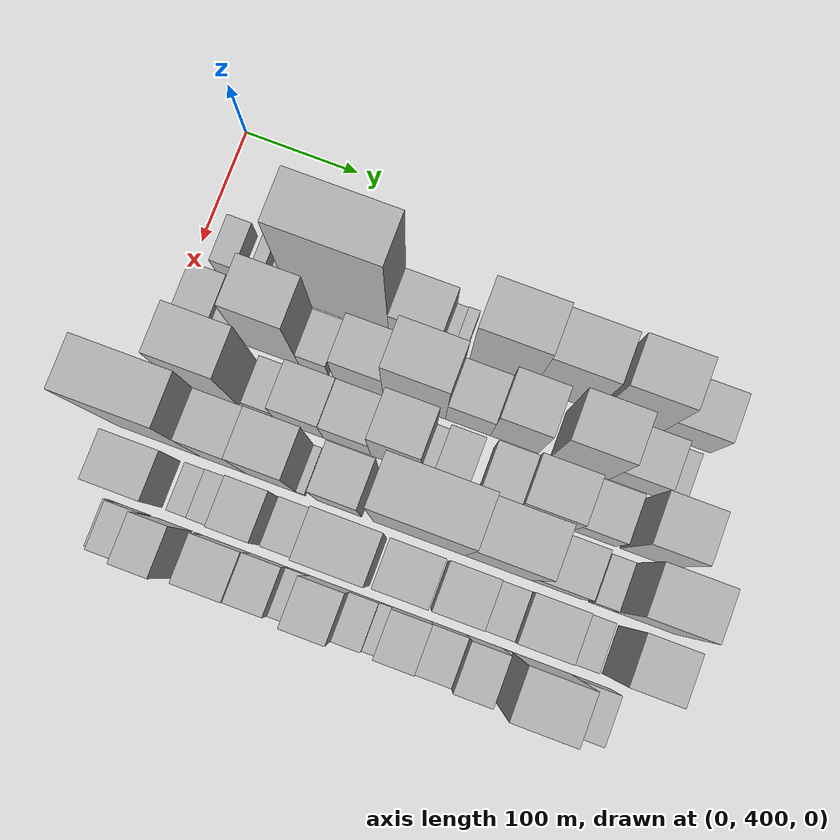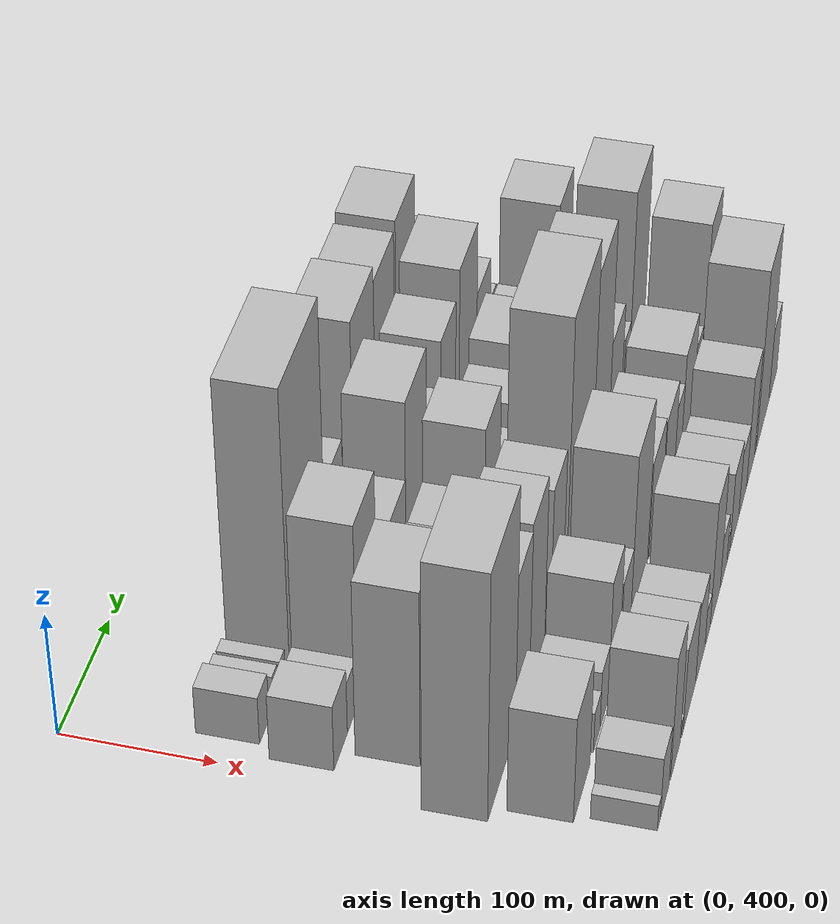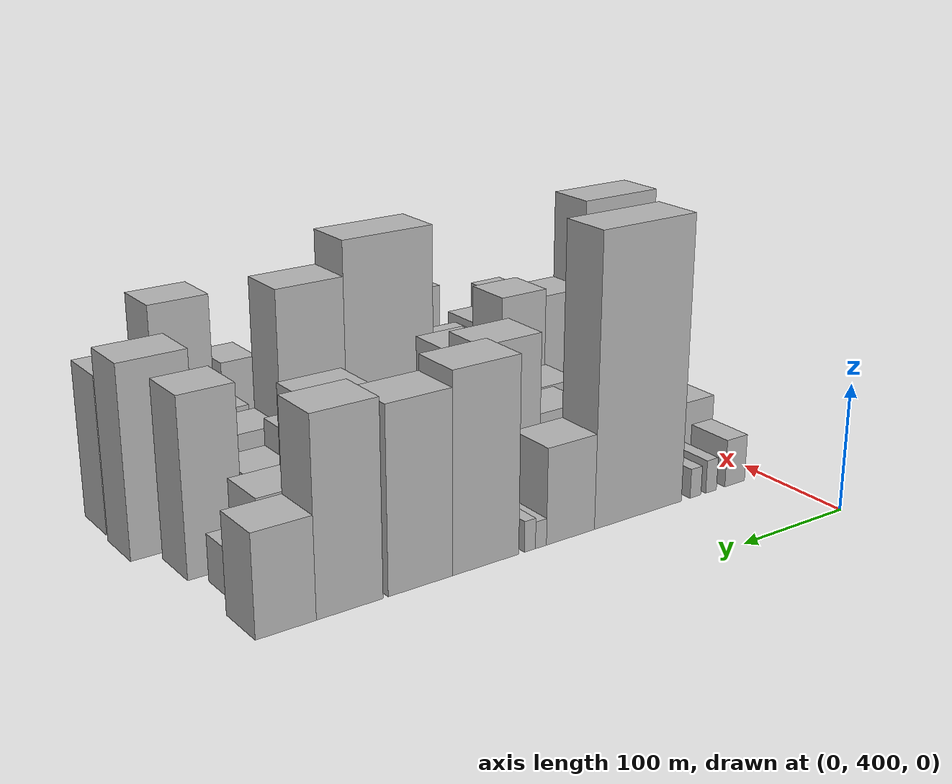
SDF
<sdf version="1.6">
 <world name="default">
  <model name="building_38">
   <static>1</static>
   <pose>100.0000 431.2023 0 0.000000 0.000000 0.000000</pose>
   <link name="link">
    <pose>0 0 19.50 0 0 0</pose>
    <collision name="collision"><geometry><box><size>40.0000 21.1716 39.0000</size></box></geometry></collision>
    <visual name="visual">
     <cast_shadows>0</cast_shadows>
     <geometry><box><size>40.0000 21.1716 39.0000</size></box></geometry>
     <material>
      <script>
       <uri>model://HANNAS_wall/materials/scripts</uri>
       <uri>model://HANNAS_wall/materials/textures</uri>
       <name>vrc/HANNAS_wall</name>
      </script>
     </material>
    </visual>
   </link>
  </model>
  <model name="building_39">
   <static>1</static>
   <pose>100.0000 456.4045 0 0.000000 0.000000 0.000000</pose>
   <link name="link">
    <pose>0 0 13.50 0 0 0</pose>
    <collision name="collision"><geometry><box><size>40.0000 11.2328 27.0000</size></box></geometry></collision>
    <visual name="visual">
     <cast_shadows>0</cast_shadows>
     <geometry><box><size>40.0000 11.2328 27.0000</size></box></geometry>
     <material>
      <script>
       <uri>model://HANNAS_wall/materials/scripts</uri>
       <uri>model://HANNAS_wall/materials/textures</uri>
       <name>vrc/HANNAS_wall</name>
      </script>
     </material>
    </visual>
   </link>
  </model>
  <model name="building_40">
   <static>1</static>
   <pose>100.0000 472.6776 0 0.000000 0.000000 0.000000</pose>
   <link name="link">
    <pose>0 0 12.00 0 0 0</pose>
    <collision name="collision"><geometry><box><size>40.0000 11.3134 24.0000</size></box></geometry></collision>
    <visual name="visual">
     <cast_shadows>0</cast_shadows>
     <geometry><box><size>40.0000 11.3134 24.0000</size></box></geometry>
     <material>
      <script>
       <uri>model://HANNAS_wall/materials/scripts</uri>
       <uri>model://HANNAS_wall/materials/textures</uri>
       <name>vrc/HANNAS_wall</name>
      </script>
     </material>
    </visual>
   </link>
  </model>
  <model name="building_41">
   <static>1</static>
   <pose>100.0000 530.1198 0 0.000000 0.000000 0.000000</pose>
   <link name="link">
    <pose>0 0 112.50 0 0 0</pose>
    <collision name="collision"><geometry><box><size>40.0000 85.5712 225.0000</size></box></geometry></collision>
    <visual name="visual">
     <cast_shadows>0</cast_shadows>
     <geometry><box><size>40.0000 85.5712 225.0000</size></box></geometry>
     <material>
      <script>
       <uri>model://HANNAS_wall/materials/scripts</uri>
       <uri>model://HANNAS_wall/materials/textures</uri>
       <name>vrc/HANNAS_wall</name>
      </script>
     </material>
    </visual>
   </link>
  </model>
  <model name="building_42">
   <static>1</static>
   <pose>100.0000 595.1316 0 0.000000 0.000000 0.000000</pose>
   <link name="link">
    <pose>0 0 37.50 0 0 0</pose>
    <collision name="collision"><geometry><box><size>40.0000 44.4523 75.0000</size></box></geometry></collision>
    <visual name="visual">
     <cast_shadows>0</cast_shadows>
     <geometry><box><size>40.0000 44.4523 75.0000</size></box></geometry>
     <material>
      <script>
       <uri>model://HANNAS_wall/materials/scripts</uri>
       <uri>model://HANNAS_wall/materials/textures</uri>
       <name>vrc/HANNAS_wall</name>
      </script>
     </material>
    </visual>
   </link>
  </model>
  <model name="building_43">
   <static>1</static>
   <pose>100.0000 622.2904 0 0.000000 0.000000 0.000000</pose>
   <link name="link">
    <pose>0 0 10.50 0 0 0</pose>
    <collision name="collision"><geometry><box><size>40.0000 9.8653 21.0000</size></box></geometry></collision>
    <visual name="visual">
     <cast_shadows>0</cast_shadows>
     <geometry><box><size>40.0000 9.8653 21.0000</size></box></geometry>
     <material>
      <script>
       <uri>model://HANNAS_wall/materials/scripts</uri>
       <uri>model://HANNAS_wall/materials/textures</uri>
       <name>vrc/HANNAS_wall</name>
      </script>
     </material>
    </visual>
   </link>
  </model>
  <model name="building_44">
   <static>1</static>
   <pose>100.0000 632.1408 0 0.000000 0.000000 0.000000</pose>
   <link name="link">
    <pose>0 0 12.00 0 0 0</pose>
    <collision name="collision"><geometry><box><size>40.0000 9.8353 24.0000</size></box></geometry></collision>
    <visual name="visual">
     <cast_shadows>0</cast_shadows>
     <geometry><box><size>40.0000 9.8353 24.0000</size></box></geometry>
     <material>
      <script>
       <uri>model://HANNAS_wall/materials/scripts</uri>
       <uri>model://HANNAS_wall/materials/textures</uri>
       <name>vrc/HANNAS_wall</name>
      </script>
     </material>
    </visual>
   </link>
  </model>
  <model name="building_45">
   <static>1</static>
   <pose>100.0000 670.4253 0 0.000000 0.000000 0.000000</pose>
   <link name="link">
    <pose>0 0 75.00 0 0 0</pose>
    <collision name="collision"><geometry><box><size>40.0000 56.7336 150.0000</size></box></geometry></collision>
    <visual name="visual">
     <cast_shadows>0</cast_shadows>
     <geometry><box><size>40.0000 56.7336 150.0000</size></box></geometry>
     <material>
      <script>
       <uri>model://HANNAS_wall/materials/scripts</uri>
       <uri>model://HANNAS_wall/materials/textures</uri>
       <name>vrc/HANNAS_wall</name>
      </script>
     </material>
    </visual>
   </link>
  </model>
  <model name="building_46">
   <static>1</static>
   <pose>100.0000 725.0157 0 0.000000 0.000000 0.000000</pose>
   <link name="link">
    <pose>0 0 69.00 0 0 0</pose>
    <collision name="collision"><geometry><box><size>40.0000 52.4473 138.0000</size></box></geometry></collision>
    <visual name="visual">
     <cast_shadows>0</cast_shadows>
     <geometry><box><size>40.0000 52.4473 138.0000</size></box></geometry>
     <material>
      <script>
       <uri>model://HANNAS_wall/materials/scripts</uri>
       <uri>model://HANNAS_wall/materials/textures</uri>
       <name>vrc/HANNAS_wall</name>
      </script>
     </material>
    </visual>
   </link>
  </model>
  <model name="building_47">
   <static>1</static>
   <pose>100.0000 780.8229 0 0.000000 0.000000 0.000000</pose>
   <link name="link">
    <pose>0 0 72.00 0 0 0</pose>
    <collision name="collision"><geometry><box><size>40.0000 51.1670 144.0000</size></box></geometry></collision>
    <visual name="visual">
     <cast_shadows>0</cast_shadows>
     <geometry><box><size>40.0000 51.1670 144.0000</size></box></geometry>
     <material>
      <script>
       <uri>model://HANNAS_wall/materials/scripts</uri>
       <uri>model://HANNAS_wall/materials/textures</uri>
       <name>vrc/HANNAS_wall</name>
      </script>
     </material>
    </visual>
   </link>
  </model>
  <model name="building_48">
   <static>1</static>
   <pose>100.0000 828.6658 0 0.000000 0.000000 0.000000</pose>
   <link name="link">
    <pose>0 0 37.50 0 0 0</pose>
    <collision name="collision"><geometry><box><size>40.0000 44.5188 75.0000</size></box></geometry></collision>
    <visual name="visual">
     <cast_shadows>0</cast_shadows>
     <geometry><box><size>40.0000 44.5188 75.0000</size></box></geometry>
     <material>
      <script>
       <uri>model://HANNAS_wall/materials/scripts</uri>
       <uri>model://HANNAS_wall/materials/textures</uri>
       <name>vrc/HANNAS_wall</name>
      </script>
     </material>
    </visual>
   </link>
  </model>
  <model name="building_87">
   <static>1</static>
   <pose>149.0000 425.9440 0 0.000000 0.000000 0.000000</pose>
   <link name="link">
    <pose>0 0 27.00 0 0 0</pose>
    <collision name="collision"><geometry><box><size>40.0000 31.2942 54.0000</size></box></geometry></collision>
    <visual name="visual">
     <cast_shadows>0</cast_shadows>
     <geometry><box><size>40.0000 31.2942 54.0000</size></box></geometry>
     <material>
      <script>
       <uri>model://HANNAS_wall/materials/scripts</uri>
       <uri>model://HANNAS_wall/materials/textures</uri>
       <name>vrc/HANNAS_wall</name>
      </script>
     </material>
    </visual>
   </link>
  </model>
  <model name="building_88">
   <static>1</static>
   <pose>149.0000 452.9123 0 0.000000 0.000000 0.000000</pose>
   <link name="link">
    <pose>0 0 21.00 0 0 0</pose>
    <collision name="collision"><geometry><box><size>40.0000 22.6424 42.0000</size></box></geometry></collision>
    <visual name="visual">
     <cast_shadows>0</cast_shadows>
     <geometry><box><size>40.0000 22.6424 42.0000</size></box></geometry>
     <material>
      <script>
       <uri>model://HANNAS_wall/materials/scripts</uri>
       <uri>model://HANNAS_wall/materials/textures</uri>
       <name>vrc/HANNAS_wall</name>
      </script>
     </material>
    </visual>
   </link>
  </model>
  <model name="building_89">
   <static>1</static>
   <pose>149.0000 488.6452 0 0.000000 0.000000 0.000000</pose>
   <link name="link">
    <pose>0 0 75.00 0 0 0</pose>
    <collision name="collision"><geometry><box><size>40.0000 48.8234 150.0000</size></box></geometry></collision>
    <visual name="visual">
     <cast_shadows>0</cast_shadows>
     <geometry><box><size>40.0000 48.8234 150.0000</size></box></geometry>
     <material>
      <script>
       <uri>model://HANNAS_wall/materials/scripts</uri>
       <uri>model://HANNAS_wall/materials/textures</uri>
       <name>vrc/HANNAS_wall</name>
      </script>
     </material>
    </visual>
   </link>
  </model>
  <model name="building_90">
   <static>1</static>
   <pose>149.0000 525.9515 0 0.000000 0.000000 0.000000</pose>
   <link name="link">
    <pose>0 0 22.50 0 0 0</pose>
    <collision name="collision"><geometry><box><size>40.0000 25.7893 45.0000</size></box></geometry></collision>
    <visual name="visual">
     <cast_shadows>0</cast_shadows>
     <geometry><box><size>40.0000 25.7893 45.0000</size></box></geometry>
     <material>
      <script>
       <uri>model://HANNAS_wall/materials/scripts</uri>
       <uri>model://HANNAS_wall/materials/textures</uri>
       <name>vrc/HANNAS_wall</name>
      </script>
     </material>
    </visual>
   </link>
  </model>
  <model name="building_91">
   <static>1</static>
   <pose>149.0000 564.6220 0 0.000000 0.000000 0.000000</pose>
   <link name="link">
    <pose>0 0 39.00 0 0 0</pose>
    <collision name="collision"><geometry><box><size>40.0000 43.5516 78.0000</size></box></geometry></collision>
    <visual name="visual">
     <cast_shadows>0</cast_shadows>
     <geometry><box><size>40.0000 43.5516 78.0000</size></box></geometry>
     <material>
      <script>
       <uri>model://HANNAS_wall/materials/scripts</uri>
       <uri>model://HANNAS_wall/materials/textures</uri>
       <name>vrc/HANNAS_wall</name>
      </script>
     </material>
    </visual>
   </link>
  </model>
  <model name="building_92">
   <static>1</static>
   <pose>149.0000 613.3018 0 0.000000 0.000000 0.000000</pose>
   <link name="link">
    <pose>0 0 70.50 0 0 0</pose>
    <collision name="collision"><geometry><box><size>40.0000 53.8082 141.0000</size></box></geometry></collision>
    <visual name="visual">
     <cast_shadows>0</cast_shadows>
     <geometry><box><size>40.0000 53.8082 141.0000</size></box></geometry>
     <material>
      <script>
       <uri>model://HANNAS_wall/materials/scripts</uri>
       <uri>model://HANNAS_wall/materials/textures</uri>
       <name>vrc/HANNAS_wall</name>
      </script>
     </material>
    </visual>
   </link>
  </model>
  <model name="building_93">
   <static>1</static>
   <pose>149.0000 659.6577 0 0.000000 0.000000 0.000000</pose>
   <link name="link">
    <pose>0 0 37.50 0 0 0</pose>
    <collision name="collision"><geometry><box><size>40.0000 38.9035 75.0000</size></box></geometry></collision>
    <visual name="visual">
     <cast_shadows>0</cast_shadows>
     <geometry><box><size>40.0000 38.9035 75.0000</size></box></geometry>
     <material>
      <script>
       <uri>model://HANNAS_wall/materials/scripts</uri>
       <uri>model://HANNAS_wall/materials/textures</uri>
       <name>vrc/HANNAS_wall</name>
      </script>
     </material>
    </visual>
   </link>
  </model>
  <model name="building_94">
   <static>1</static>
   <pose>149.0000 699.7835 0 0.000000 0.000000 0.000000</pose>
   <link name="link">
    <pose>0 0 57.00 0 0 0</pose>
    <collision name="collision"><geometry><box><size>40.0000 41.3482 114.0000</size></box></geometry></collision>
    <visual name="visual">
     <cast_shadows>0</cast_shadows>
     <geometry><box><size>40.0000 41.3482 114.0000</size></box></geometry>
     <material>
      <script>
       <uri>model://HANNAS_wall/materials/scripts</uri>
       <uri>model://HANNAS_wall/materials/textures</uri>
       <name>vrc/HANNAS_wall</name>
      </script>
     </material>
    </visual>
   </link>
  </model>
  <model name="building_95">
   <static>1</static>
   <pose>149.0000 755.7839 0 0.000000 0.000000 0.000000</pose>
   <link name="link">
    <pose>0 0 66.00 0 0 0</pose>
    <collision name="collision"><geometry><box><size>40.0000 50.6525 132.0000</size></box></geometry></collision>
    <visual name="visual">
     <cast_shadows>0</cast_shadows>
     <geometry><box><size>40.0000 50.6525 132.0000</size></box></geometry>
     <material>
      <script>
       <uri>model://HANNAS_wall/materials/scripts</uri>
       <uri>model://HANNAS_wall/materials/textures</uri>
       <name>vrc/HANNAS_wall</name>
      </script>
     </material>
    </visual>
   </link>
  </model>
  <model name="building_96">
   <static>1</static>
   <pose>149.0000 801.1169 0 0.000000 0.000000 0.000000</pose>
   <link name="link">
    <pose>0 0 36.00 0 0 0</pose>
    <collision name="collision"><geometry><box><size>40.0000 40.0135 72.0000</size></box></geometry></collision>
    <visual name="visual">
     <cast_shadows>0</cast_shadows>
     <geometry><box><size>40.0000 40.0135 72.0000</size></box></geometry>
     <material>
      <script>
       <uri>model://HANNAS_wall/materials/scripts</uri>
       <uri>model://HANNAS_wall/materials/textures</uri>
       <name>vrc/HANNAS_wall</name>
      </script>
     </material>
    </visual>
   </link>
  </model>
  <model name="building_97">
   <static>1</static>
   <pose>149.0000 830.2136 0 0.000000 0.000000 0.000000</pose>
   <link name="link">
    <pose>0 0 18.00 0 0 0</pose>
    <collision name="collision"><geometry><box><size>40.0000 18.1798 36.0000</size></box></geometry></collision>
    <visual name="visual">
     <cast_shadows>0</cast_shadows>
     <geometry><box><size>40.0000 18.1798 36.0000</size></box></geometry>
     <material>
      <script>
       <uri>model://HANNAS_wall/materials/scripts</uri>
       <uri>model://HANNAS_wall/materials/textures</uri>
       <name>vrc/HANNAS_wall</name>
      </script>
     </material>
    </visual>
   </link>
  </model>
  <model name="building_132">
   <static>1</static>
   <pose>198.0000 452.6744 0 0.000000 0.000000 0.000000</pose>
   <link name="link">
    <pose>0 0 72.00 0 0 0</pose>
    <collision name="collision"><geometry><box><size>40.0000 54.0747 144.0000</size></box></geometry></collision>
    <visual name="visual">
     <cast_shadows>0</cast_shadows>
     <geometry><box><size>40.0000 54.0747 144.0000</size></box></geometry>
     <material>
      <script>
       <uri>model://HANNAS_wall/materials/scripts</uri>
       <uri>model://HANNAS_wall/materials/textures</uri>
       <name>vrc/HANNAS_wall</name>
      </script>
     </material>
    </visual>
   </link>
  </model>
  <model name="building_133">
   <static>1</static>
   <pose>198.0000 499.1695 0 0.000000 0.000000 0.000000</pose>
   <link name="link">
    <pose>0 0 21.00 0 0 0</pose>
    <collision name="collision"><geometry><box><size>40.0000 24.9154 42.0000</size></box></geometry></collision>
    <visual name="visual">
     <cast_shadows>0</cast_shadows>
     <geometry><box><size>40.0000 24.9154 42.0000</size></box></geometry>
     <material>
      <script>
       <uri>model://HANNAS_wall/materials/scripts</uri>
       <uri>model://HANNAS_wall/materials/textures</uri>
       <name>vrc/HANNAS_wall</name>
      </script>
     </material>
    </visual>
   </link>
  </model>
  <model name="building_134">
   <static>1</static>
   <pose>198.0000 532.3416 0 0.000000 0.000000 0.000000</pose>
   <link name="link">
    <pose>0 0 37.50 0 0 0</pose>
    <collision name="collision"><geometry><box><size>40.0000 41.4289 75.0000</size></box></geometry></collision>
    <visual name="visual">
     <cast_shadows>0</cast_shadows>
     <geometry><box><size>40.0000 41.4289 75.0000</size></box></geometry>
     <material>
      <script>
       <uri>model://HANNAS_wall/materials/scripts</uri>
       <uri>model://HANNAS_wall/materials/textures</uri>
       <name>vrc/HANNAS_wall</name>
      </script>
     </material>
    </visual>
   </link>
  </model>
  <model name="building_135">
   <static>1</static>
   <pose>198.0000 573.5250 0 0.000000 0.000000 0.000000</pose>
   <link name="link">
    <pose>0 0 36.00 0 0 0</pose>
    <collision name="collision"><geometry><box><size>40.0000 40.9378 72.0000</size></box></geometry></collision>
    <visual name="visual">
     <cast_shadows>0</cast_shadows>
     <geometry><box><size>40.0000 40.9378 72.0000</size></box></geometry>
     <material>
      <script>
       <uri>model://HANNAS_wall/materials/scripts</uri>
       <uri>model://HANNAS_wall/materials/textures</uri>
       <name>vrc/HANNAS_wall</name>
      </script>
     </material>
    </visual>
   </link>
  </model>
  <model name="building_136">
   <static>1</static>
   <pose>198.0000 615.1173 0 0.000000 0.000000 0.000000</pose>
   <link name="link">
    <pose>0 0 61.50 0 0 0</pose>
    <collision name="collision"><geometry><box><size>40.0000 42.2467 123.0000</size></box></geometry></collision>
    <visual name="visual">
     <cast_shadows>0</cast_shadows>
     <geometry><box><size>40.0000 42.2467 123.0000</size></box></geometry>
     <material>
      <script>
       <uri>model://HANNAS_wall/materials/scripts</uri>
       <uri>model://HANNAS_wall/materials/textures</uri>
       <name>vrc/HANNAS_wall</name>
      </script>
     </material>
    </visual>
   </link>
  </model>
  <model name="building_137">
   <static>1</static>
   <pose>198.0000 641.7158 0 0.000000 0.000000 0.000000</pose>
   <link name="link">
    <pose>0 0 12.00 0 0 0</pose>
    <collision name="collision"><geometry><box><size>40.0000 10.9503 24.0000</size></box></geometry></collision>
    <visual name="visual">
     <cast_shadows>0</cast_shadows>
     <geometry><box><size>40.0000 10.9503 24.0000</size></box></geometry>
     <material>
      <script>
       <uri>model://HANNAS_wall/materials/scripts</uri>
       <uri>model://HANNAS_wall/materials/textures</uri>
       <name>vrc/HANNAS_wall</name>
      </script>
     </material>
    </visual>
   </link>
  </model>
  <model name="building_138">
   <static>1</static>
   <pose>198.0000 661.6977 0 0.000000 0.000000 0.000000</pose>
   <link name="link">
    <pose>0 0 27.00 0 0 0</pose>
    <collision name="collision"><geometry><box><size>40.0000 29.0134 54.0000</size></box></geometry></collision>
    <visual name="visual">
     <cast_shadows>0</cast_shadows>
     <geometry><box><size>40.0000 29.0134 54.0000</size></box></geometry>
     <material>
      <script>
       <uri>model://HANNAS_wall/materials/scripts</uri>
       <uri>model://HANNAS_wall/materials/textures</uri>
       <name>vrc/HANNAS_wall</name>
      </script>
     </material>
    </visual>
   </link>
  </model>
  <model name="building_139">
   <static>1</static>
   <pose>198.0000 701.8860 0 0.000000 0.000000 0.000000</pose>
   <link name="link">
    <pose>0 0 33.00 0 0 0</pose>
    <collision name="collision"><geometry><box><size>40.0000 33.3633 66.0000</size></box></geometry></collision>
    <visual name="visual">
     <cast_shadows>0</cast_shadows>
     <geometry><box><size>40.0000 33.3633 66.0000</size></box></geometry>
     <material>
      <script>
       <uri>model://HANNAS_wall/materials/scripts</uri>
       <uri>model://HANNAS_wall/materials/textures</uri>
       <name>vrc/HANNAS_wall</name>
      </script>
     </material>
    </visual>
   </link>
  </model>
  <model name="building_140">
   <static>1</static>
   <pose>198.0000 742.6270 0 0.000000 0.000000 0.000000</pose>
   <link name="link">
    <pose>0 0 43.50 0 0 0</pose>
    <collision name="collision"><geometry><box><size>40.0000 48.1188 87.0000</size></box></geometry></collision>
    <visual name="visual">
     <cast_shadows>0</cast_shadows>
     <geometry><box><size>40.0000 48.1188 87.0000</size></box></geometry>
     <material>
      <script>
       <uri>model://HANNAS_wall/materials/scripts</uri>
       <uri>model://HANNAS_wall/materials/textures</uri>
       <name>vrc/HANNAS_wall</name>
      </script>
     </material>
    </visual>
   </link>
  </model>
  <model name="building_141">
   <static>1</static>
   <pose>198.0000 785.0281 0 0.000000 0.000000 0.000000</pose>
   <link name="link">
    <pose>0 0 33.00 0 0 0</pose>
    <collision name="collision"><geometry><box><size>40.0000 36.6835 66.0000</size></box></geometry></collision>
    <visual name="visual">
     <cast_shadows>0</cast_shadows>
     <geometry><box><size>40.0000 36.6835 66.0000</size></box></geometry>
     <material>
      <script>
       <uri>model://HANNAS_wall/materials/scripts</uri>
       <uri>model://HANNAS_wall/materials/textures</uri>
       <name>vrc/HANNAS_wall</name>
      </script>
     </material>
    </visual>
   </link>
  </model>
  <model name="building_142">
   <static>1</static>
   <pose>198.0000 829.0769 0 0.000000 0.000000 0.000000</pose>
   <link name="link">
    <pose>0 0 67.50 0 0 0</pose>
    <collision name="collision"><geometry><box><size>40.0000 43.4140 135.0000</size></box></geometry></collision>
    <visual name="visual">
     <cast_shadows>0</cast_shadows>
     <geometry><box><size>40.0000 43.4140 135.0000</size></box></geometry>
     <material>
      <script>
       <uri>model://HANNAS_wall/materials/scripts</uri>
       <uri>model://HANNAS_wall/materials/textures</uri>
       <name>vrc/HANNAS_wall</name>
      </script>
     </material>
    </visual>
   </link>
  </model>
  <model name="building_178">
   <static>1</static>
   <pose>247.0000 429.5662 0 0.000000 0.000000 0.000000</pose>
   <link name="link">
    <pose>0 0 100.50 0 0 0</pose>
    <collision name="collision"><geometry><box><size>40.0000 73.9250 201.0000</size></box></geometry></collision>
    <visual name="visual">
     <cast_shadows>0</cast_shadows>
     <geometry><box><size>40.0000 73.9250 201.0000</size></box></geometry>
     <material>
      <script>
       <uri>model://HANNAS_wall/materials/scripts</uri>
       <uri>model://HANNAS_wall/materials/textures</uri>
       <name>vrc/HANNAS_wall</name>
      </script>
     </material>
    </visual>
   </link>
  </model>
  <model name="building_179">
   <static>1</static>
   <pose>247.0000 486.2080 0 0.000000 0.000000 0.000000</pose>
   <link name="link">
    <pose>0 0 64.50 0 0 0</pose>
    <collision name="collision"><geometry><box><size>40.0000 39.3587 129.0000</size></box></geometry></collision>
    <visual name="visual">
     <cast_shadows>0</cast_shadows>
     <geometry><box><size>40.0000 39.3587 129.0000</size></box></geometry>
     <material>
      <script>
       <uri>model://HANNAS_wall/materials/scripts</uri>
       <uri>model://HANNAS_wall/materials/textures</uri>
       <name>vrc/HANNAS_wall</name>
      </script>
     </material>
    </visual>
   </link>
  </model>
  <model name="building_180">
   <static>1</static>
   <pose>247.0000 527.4903 0 0.000000 0.000000 0.000000</pose>
   <link name="link">
    <pose>0 0 67.50 0 0 0</pose>
    <collision name="collision"><geometry><box><size>40.0000 43.2059 135.0000</size></box></geometry></collision>
    <visual name="visual">
     <cast_shadows>0</cast_shadows>
     <geometry><box><size>40.0000 43.2059 135.0000</size></box></geometry>
     <material>
      <script>
       <uri>model://HANNAS_wall/materials/scripts</uri>
       <uri>model://HANNAS_wall/materials/textures</uri>
       <name>vrc/HANNAS_wall</name>
      </script>
     </material>
    </visual>
   </link>
  </model>
  <model name="building_181">
   <static>1</static>
   <pose>247.0000 552.7559 0 0.000000 0.000000 0.000000</pose>
   <link name="link">
    <pose>0 0 7.50 0 0 0</pose>
    <collision name="collision"><geometry><box><size>40.0000 7.3252 15.0000</size></box></geometry></collision>
    <visual name="visual">
     <cast_shadows>0</cast_shadows>
     <geometry><box><size>40.0000 7.3252 15.0000</size></box></geometry>
     <material>
      <script>
       <uri>model://HANNAS_wall/materials/scripts</uri>
       <uri>model://HANNAS_wall/materials/textures</uri>
       <name>vrc/HANNAS_wall</name>
      </script>
     </material>
    </visual>
   </link>
  </model>
  <model name="building_182">
   <static>1</static>
   <pose>247.0000 585.6581 0 0.000000 0.000000 0.000000</pose>
   <link name="link">
    <pose>0 0 54.00 0 0 0</pose>
    <collision name="collision"><geometry><box><size>40.0000 38.4792 108.0000</size></box></geometry></collision>
    <visual name="visual">
     <cast_shadows>0</cast_shadows>
     <geometry><box><size>40.0000 38.4792 108.0000</size></box></geometry>
     <material>
      <script>
       <uri>model://HANNAS_wall/materials/scripts</uri>
       <uri>model://HANNAS_wall/materials/textures</uri>
       <name>vrc/HANNAS_wall</name>
      </script>
     </material>
    </visual>
   </link>
  </model>
  <model name="building_183">
   <static>1</static>
   <pose>247.0000 653.9100 0 0.000000 0.000000 0.000000</pose>
   <link name="link">
    <pose>0 0 102.00 0 0 0</pose>
    <collision name="collision"><geometry><box><size>40.0000 78.0247 204.0000</size></box></geometry></collision>
    <visual name="visual">
     <cast_shadows>0</cast_shadows>
     <geometry><box><size>40.0000 78.0247 204.0000</size></box></geometry>
     <material>
      <script>
       <uri>model://HANNAS_wall/materials/scripts</uri>
       <uri>model://HANNAS_wall/materials/textures</uri>
       <name>vrc/HANNAS_wall</name>
      </script>
     </material>
    </visual>
   </link>
  </model>
  <model name="building_184">
   <static>1</static>
   <pose>247.0000 720.7816 0 0.000000 0.000000 0.000000</pose>
   <link name="link">
    <pose>0 0 88.50 0 0 0</pose>
    <collision name="collision"><geometry><box><size>40.0000 55.7184 177.0000</size></box></geometry></collision>
    <visual name="visual">
     <cast_shadows>0</cast_shadows>
     <geometry><box><size>40.0000 55.7184 177.0000</size></box></geometry>
     <material>
      <script>
       <uri>model://HANNAS_wall/materials/scripts</uri>
       <uri>model://HANNAS_wall/materials/textures</uri>
       <name>vrc/HANNAS_wall</name>
      </script>
     </material>
    </visual>
   </link>
  </model>
  <model name="building_185">
   <static>1</static>
   <pose>247.0000 770.1704 0 0.000000 0.000000 0.000000</pose>
   <link name="link">
    <pose>0 0 37.50 0 0 0</pose>
    <collision name="collision"><geometry><box><size>40.0000 43.0592 75.0000</size></box></geometry></collision>
    <visual name="visual">
     <cast_shadows>0</cast_shadows>
     <geometry><box><size>40.0000 43.0592 75.0000</size></box></geometry>
     <material>
      <script>
       <uri>model://HANNAS_wall/materials/scripts</uri>
       <uri>model://HANNAS_wall/materials/textures</uri>
       <name>vrc/HANNAS_wall</name>
      </script>
     </material>
    </visual>
   </link>
  </model>
  <model name="building_186">
   <static>1</static>
   <pose>247.0000 807.6648 0 0.000000 0.000000 0.000000</pose>
   <link name="link">
    <pose>0 0 19.50 0 0 0</pose>
    <collision name="collision"><geometry><box><size>40.0000 19.9296 39.0000</size></box></geometry></collision>
    <visual name="visual">
     <cast_shadows>0</cast_shadows>
     <geometry><box><size>40.0000 19.9296 39.0000</size></box></geometry>
     <material>
      <script>
       <uri>model://HANNAS_wall/materials/scripts</uri>
       <uri>model://HANNAS_wall/materials/textures</uri>
       <name>vrc/HANNAS_wall</name>
      </script>
     </material>
    </visual>
   </link>
  </model>
  <model name="building_187">
   <static>1</static>
   <pose>247.0000 844.2778 0 0.000000 0.000000 0.000000</pose>
   <link name="link">
    <pose>0 0 73.50 0 0 0</pose>
    <collision name="collision"><geometry><box><size>40.0000 53.2964 147.0000</size></box></geometry></collision>
    <visual name="visual">
     <cast_shadows>0</cast_shadows>
     <geometry><box><size>40.0000 53.2964 147.0000</size></box></geometry>
     <material>
      <script>
       <uri>model://HANNAS_wall/materials/scripts</uri>
       <uri>model://HANNAS_wall/materials/textures</uri>
       <name>vrc/HANNAS_wall</name>
      </script>
     </material>
    </visual>
   </link>
  </model>
  <model name="building_224">
   <static>1</static>
   <pose>296.0000 427.5232 0 0.000000 0.000000 0.000000</pose>
   <link name="link">
    <pose>0 0 43.50 0 0 0</pose>
    <collision name="collision"><geometry><box><size>40.0000 47.7346 87.0000</size></box></geometry></collision>
    <visual name="visual">
     <cast_shadows>0</cast_shadows>
     <geometry><box><size>40.0000 47.7346 87.0000</size></box></geometry>
     <material>
      <script>
       <uri>model://HANNAS_wall/materials/scripts</uri>
       <uri>model://HANNAS_wall/materials/textures</uri>
       <name>vrc/HANNAS_wall</name>
      </script>
     </material>
    </visual>
   </link>
  </model>
  <model name="building_225">
   <static>1</static>
   <pose>296.0000 471.1938 0 0.000000 0.000000 0.000000</pose>
   <link name="link">
    <pose>0 0 16.50 0 0 0</pose>
    <collision name="collision"><geometry><box><size>40.0000 19.6067 33.0000</size></box></geometry></collision>
    <visual name="visual">
     <cast_shadows>0</cast_shadows>
     <geometry><box><size>40.0000 19.6067 33.0000</size></box></geometry>
     <material>
      <script>
       <uri>model://HANNAS_wall/materials/scripts</uri>
       <uri>model://HANNAS_wall/materials/textures</uri>
       <name>vrc/HANNAS_wall</name>
      </script>
     </material>
    </visual>
   </link>
  </model>
  <model name="building_226">
   <static>1</static>
   <pose>296.0000 493.3015 0 0.000000 0.000000 0.000000</pose>
   <link name="link">
    <pose>0 0 24.00 0 0 0</pose>
    <collision name="collision"><geometry><box><size>40.0000 24.6087 48.0000</size></box></geometry></collision>
    <visual name="visual">
     <cast_shadows>0</cast_shadows>
     <geometry><box><size>40.0000 24.6087 48.0000</size></box></geometry>
     <material>
      <script>
       <uri>model://HANNAS_wall/materials/scripts</uri>
       <uri>model://HANNAS_wall/materials/textures</uri>
       <name>vrc/HANNAS_wall</name>
      </script>
     </material>
    </visual>
   </link>
  </model>
  <model name="building_227">
   <static>1</static>
   <pose>296.0000 522.5748 0 0.000000 0.000000 0.000000</pose>
   <link name="link">
    <pose>0 0 49.50 0 0 0</pose>
    <collision name="collision"><geometry><box><size>40.0000 33.9379 99.0000</size></box></geometry></collision>
    <visual name="visual">
     <cast_shadows>0</cast_shadows>
     <geometry><box><size>40.0000 33.9379 99.0000</size></box></geometry>
     <material>
      <script>
       <uri>model://HANNAS_wall/materials/scripts</uri>
       <uri>model://HANNAS_wall/materials/textures</uri>
       <name>vrc/HANNAS_wall</name>
      </script>
     </material>
    </visual>
   </link>
  </model>
  <model name="building_228">
   <static>1</static>
   <pose>296.0000 559.4943 0 0.000000 0.000000 0.000000</pose>
   <link name="link">
    <pose>0 0 31.50 0 0 0</pose>
    <collision name="collision"><geometry><box><size>40.0000 31.9011 63.0000</size></box></geometry></collision>
    <visual name="visual">
     <cast_shadows>0</cast_shadows>
     <geometry><box><size>40.0000 31.9011 63.0000</size></box></geometry>
     <material>
      <script>
       <uri>model://HANNAS_wall/materials/scripts</uri>
       <uri>model://HANNAS_wall/materials/textures</uri>
       <name>vrc/HANNAS_wall</name>
      </script>
     </material>
    </visual>
   </link>
  </model>
  <model name="building_229">
   <static>1</static>
   <pose>296.0000 602.6547 0 0.000000 0.000000 0.000000</pose>
   <link name="link">
    <pose>0 0 69.00 0 0 0</pose>
    <collision name="collision"><geometry><box><size>40.0000 54.4197 138.0000</size></box></geometry></collision>
    <visual name="visual">
     <cast_shadows>0</cast_shadows>
     <geometry><box><size>40.0000 54.4197 138.0000</size></box></geometry>
     <material>
      <script>
       <uri>model://HANNAS_wall/materials/scripts</uri>
       <uri>model://HANNAS_wall/materials/textures</uri>
       <name>vrc/HANNAS_wall</name>
      </script>
     </material>
    </visual>
   </link>
  </model>
  <model name="building_230">
   <static>1</static>
   <pose>296.0000 656.2849 0 0.000000 0.000000 0.000000</pose>
   <link name="link">
    <pose>0 0 40.50 0 0 0</pose>
    <collision name="collision"><geometry><box><size>40.0000 44.8407 81.0000</size></box></geometry></collision>
    <visual name="visual">
     <cast_shadows>0</cast_shadows>
     <geometry><box><size>40.0000 44.8407 81.0000</size></box></geometry>
     <material>
      <script>
       <uri>model://HANNAS_wall/materials/scripts</uri>
       <uri>model://HANNAS_wall/materials/textures</uri>
       <name>vrc/HANNAS_wall</name>
      </script>
     </material>
    </visual>
   </link>
  </model>
  <model name="building_231">
   <static>1</static>
   <pose>296.0000 702.4700 0 0.000000 0.000000 0.000000</pose>
   <link name="link">
    <pose>0 0 37.50 0 0 0</pose>
    <collision name="collision"><geometry><box><size>40.0000 41.5296 75.0000</size></box></geometry></collision>
    <visual name="visual">
     <cast_shadows>0</cast_shadows>
     <geometry><box><size>40.0000 41.5296 75.0000</size></box></geometry>
     <material>
      <script>
       <uri>model://HANNAS_wall/materials/scripts</uri>
       <uri>model://HANNAS_wall/materials/textures</uri>
       <name>vrc/HANNAS_wall</name>
      </script>
     </material>
    </visual>
   </link>
  </model>
  <model name="building_232">
   <static>1</static>
   <pose>296.0000 736.0231 0 0.000000 0.000000 0.000000</pose>
   <link name="link">
    <pose>0 0 25.50 0 0 0</pose>
    <collision name="collision"><geometry><box><size>40.0000 25.5765 51.0000</size></box></geometry></collision>
    <visual name="visual">
     <cast_shadows>0</cast_shadows>
     <geometry><box><size>40.0000 25.5765 51.0000</size></box></geometry>
     <material>
      <script>
       <uri>model://HANNAS_wall/materials/scripts</uri>
       <uri>model://HANNAS_wall/materials/textures</uri>
       <name>vrc/HANNAS_wall</name>
      </script>
     </material>
    </visual>
   </link>
  </model>
  <model name="building_233">
   <static>1</static>
   <pose>296.0000 771.1816 0 0.000000 0.000000 0.000000</pose>
   <link name="link">
    <pose>0 0 37.50 0 0 0</pose>
    <collision name="collision"><geometry><box><size>40.0000 44.7406 75.0000</size></box></geometry></collision>
    <visual name="visual">
     <cast_shadows>0</cast_shadows>
     <geometry><box><size>40.0000 44.7406 75.0000</size></box></geometry>
     <material>
      <script>
       <uri>model://HANNAS_wall/materials/scripts</uri>
       <uri>model://HANNAS_wall/materials/textures</uri>
       <name>vrc/HANNAS_wall</name>
      </script>
     </material>
    </visual>
   </link>
  </model>
  <model name="building_234">
   <static>1</static>
   <pose>296.0000 805.5248 0 0.000000 0.000000 0.000000</pose>
   <link name="link">
    <pose>0 0 22.50 0 0 0</pose>
    <collision name="collision"><geometry><box><size>40.0000 23.9457 45.0000</size></box></geometry></collision>
    <visual name="visual">
     <cast_shadows>0</cast_shadows>
     <geometry><box><size>40.0000 23.9457 45.0000</size></box></geometry>
     <material>
      <script>
       <uri>model://HANNAS_wall/materials/scripts</uri>
       <uri>model://HANNAS_wall/materials/textures</uri>
       <name>vrc/HANNAS_wall</name>
      </script>
     </material>
    </visual>
   </link>
  </model>
  <model name="building_235">
   <static>1</static>
   <pose>296.0000 847.3310 0 0.000000 0.000000 0.000000</pose>
   <link name="link">
    <pose>0 0 61.50 0 0 0</pose>
    <collision name="collision"><geometry><box><size>40.0000 41.6666 123.0000</size></box></geometry></collision>
    <visual name="visual">
     <cast_shadows>0</cast_shadows>
     <geometry><box><size>40.0000 41.6666 123.0000</size></box></geometry>
     <material>
      <script>
       <uri>model://HANNAS_wall/materials/scripts</uri>
       <uri>model://HANNAS_wall/materials/textures</uri>
       <name>vrc/HANNAS_wall</name>
      </script>
     </material>
    </visual>
   </link>
  </model>
  <model name="building_270">
   <static>1</static>
   <pose>345.0000 413.8100 0 0.000000 0.000000 0.000000</pose>
   <link name="link">
    <pose>0 0 10.50 0 0 0</pose>
    <collision name="collision"><geometry><box><size>40.0000 9.2035 21.0000</size></box></geometry></collision>
    <visual name="visual">
     <cast_shadows>0</cast_shadows>
     <geometry><box><size>40.0000 9.2035 21.0000</size></box></geometry>
     <material>
      <script>
       <uri>model://HANNAS_wall/materials/scripts</uri>
       <uri>model://HANNAS_wall/materials/textures</uri>
       <name>vrc/HANNAS_wall</name>
      </script>
     </material>
    </visual>
   </link>
  </model>
  <model name="building_271">
   <static>1</static>
   <pose>345.0000 431.8688 0 0.000000 0.000000 0.000000</pose>
   <link name="link">
    <pose>0 0 25.50 0 0 0</pose>
    <collision name="collision"><geometry><box><size>40.0000 26.9141 51.0000</size></box></geometry></collision>
    <visual name="visual">
     <cast_shadows>0</cast_shadows>
     <geometry><box><size>40.0000 26.9141 51.0000</size></box></geometry>
     <material>
      <script>
       <uri>model://HANNAS_wall/materials/scripts</uri>
       <uri>model://HANNAS_wall/materials/textures</uri>
       <name>vrc/HANNAS_wall</name>
      </script>
     </material>
    </visual>
   </link>
  </model>
  <model name="building_272">
   <static>1</static>
   <pose>345.0000 465.7977 0 0.000000 0.000000 0.000000</pose>
   <link name="link">
    <pose>0 0 51.00 0 0 0</pose>
    <collision name="collision"><geometry><box><size>40.0000 30.9438 102.0000</size></box></geometry></collision>
    <visual name="visual">
     <cast_shadows>0</cast_shadows>
     <geometry><box><size>40.0000 30.9438 102.0000</size></box></geometry>
     <material>
      <script>
       <uri>model://HANNAS_wall/materials/scripts</uri>
       <uri>model://HANNAS_wall/materials/textures</uri>
       <name>vrc/HANNAS_wall</name>
      </script>
     </material>
    </visual>
   </link>
  </model>
  <model name="building_273">
   <static>1</static>
   <pose>345.0000 488.2837 0 0.000000 0.000000 0.000000</pose>
   <link name="link">
    <pose>0 0 7.50 0 0 0</pose>
    <collision name="collision"><geometry><box><size>40.0000 6.0281 15.0000</size></box></geometry></collision>
    <visual name="visual">
     <cast_shadows>0</cast_shadows>
     <geometry><box><size>40.0000 6.0281 15.0000</size></box></geometry>
     <material>
      <script>
       <uri>model://HANNAS_wall/materials/scripts</uri>
       <uri>model://HANNAS_wall/materials/textures</uri>
       <name>vrc/HANNAS_wall</name>
      </script>
     </material>
    </visual>
   </link>
  </model>
  <model name="building_274">
   <static>1</static>
   <pose>345.0000 511.9479 0 0.000000 0.000000 0.000000</pose>
   <link name="link">
    <pose>0 0 34.50 0 0 0</pose>
    <collision name="collision"><geometry><box><size>40.0000 41.3003 69.0000</size></box></geometry></collision>
    <visual name="visual">
     <cast_shadows>0</cast_shadows>
     <geometry><box><size>40.0000 41.3003 69.0000</size></box></geometry>
     <material>
      <script>
       <uri>model://HANNAS_wall/materials/scripts</uri>
       <uri>model://HANNAS_wall/materials/textures</uri>
       <name>vrc/HANNAS_wall</name>
      </script>
     </material>
    </visual>
   </link>
  </model>
  <model name="building_275">
   <static>1</static>
   <pose>345.0000 548.6526 0 0.000000 0.000000 0.000000</pose>
   <link name="link">
    <pose>0 0 31.50 0 0 0</pose>
    <collision name="collision"><geometry><box><size>40.0000 32.1091 63.0000</size></box></geometry></collision>
    <visual name="visual">
     <cast_shadows>0</cast_shadows>
     <geometry><box><size>40.0000 32.1091 63.0000</size></box></geometry>
     <material>
      <script>
       <uri>model://HANNAS_wall/materials/scripts</uri>
       <uri>model://HANNAS_wall/materials/textures</uri>
       <name>vrc/HANNAS_wall</name>
      </script>
     </material>
    </visual>
   </link>
  </model>
  <model name="building_276">
   <static>1</static>
   <pose>345.0000 573.3326 0 0.000000 0.000000 0.000000</pose>
   <link name="link">
    <pose>0 0 15.00 0 0 0</pose>
    <collision name="collision"><geometry><box><size>40.0000 17.2509 30.0000</size></box></geometry></collision>
    <visual name="visual">
     <cast_shadows>0</cast_shadows>
     <geometry><box><size>40.0000 17.2509 30.0000</size></box></geometry>
     <material>
      <script>
       <uri>model://HANNAS_wall/materials/scripts</uri>
       <uri>model://HANNAS_wall/materials/textures</uri>
       <name>vrc/HANNAS_wall</name>
      </script>
     </material>
    </visual>
   </link>
  </model>
  <model name="building_277">
   <static>1</static>
   <pose>345.0000 600.0056 0 0.000000 0.000000 0.000000</pose>
   <link name="link">
    <pose>0 0 52.50 0 0 0</pose>
    <collision name="collision"><geometry><box><size>40.0000 36.0951 105.0000</size></box></geometry></collision>
    <visual name="visual">
     <cast_shadows>0</cast_shadows>
     <geometry><box><size>40.0000 36.0951 105.0000</size></box></geometry>
     <material>
      <script>
       <uri>model://HANNAS_wall/materials/scripts</uri>
       <uri>model://HANNAS_wall/materials/textures</uri>
       <name>vrc/HANNAS_wall</name>
      </script>
     </material>
    </visual>
   </link>
  </model>
  <model name="building_278">
   <static>1</static>
   <pose>345.0000 630.1956 0 0.000000 0.000000 0.000000</pose>
   <link name="link">
    <pose>0 0 21.00 0 0 0</pose>
    <collision name="collision"><geometry><box><size>40.0000 24.2849 42.0000</size></box></geometry></collision>
    <visual name="visual">
     <cast_shadows>0</cast_shadows>
     <geometry><box><size>40.0000 24.2849 42.0000</size></box></geometry>
     <material>
      <script>
       <uri>model://HANNAS_wall/materials/scripts</uri>
       <uri>model://HANNAS_wall/materials/textures</uri>
       <name>vrc/HANNAS_wall</name>
      </script>
     </material>
    </visual>
   </link>
  </model>
  <model name="building_279">
   <static>1</static>
   <pose>345.0000 647.5845 0 0.000000 0.000000 0.000000</pose>
   <link name="link">
    <pose>0 0 10.50 0 0 0</pose>
    <collision name="collision"><geometry><box><size>40.0000 10.4929 21.0000</size></box></geometry></collision>
    <visual name="visual">
     <cast_shadows>0</cast_shadows>
     <geometry><box><size>40.0000 10.4929 21.0000</size></box></geometry>
     <material>
      <script>
       <uri>model://HANNAS_wall/materials/scripts</uri>
       <uri>model://HANNAS_wall/materials/textures</uri>
       <name>vrc/HANNAS_wall</name>
      </script>
     </material>
    </visual>
   </link>
  </model>
  <model name="building_280">
   <static>1</static>
   <pose>345.0000 669.4406 0 0.000000 0.000000 0.000000</pose>
   <link name="link">
    <pose>0 0 33.00 0 0 0</pose>
    <collision name="collision"><geometry><box><size>40.0000 33.2191 66.0000</size></box></geometry></collision>
    <visual name="visual">
     <cast_shadows>0</cast_shadows>
     <geometry><box><size>40.0000 33.2191 66.0000</size></box></geometry>
     <material>
      <script>
       <uri>model://HANNAS_wall/materials/scripts</uri>
       <uri>model://HANNAS_wall/materials/textures</uri>
       <name>vrc/HANNAS_wall</name>
      </script>
     </material>
    </visual>
   </link>
  </model>
  <model name="building_281">
   <static>1</static>
   <pose>345.0000 700.8577 0 0.000000 0.000000 0.000000</pose>
   <link name="link">
    <pose>0 0 27.00 0 0 0</pose>
    <collision name="collision"><geometry><box><size>40.0000 29.6151 54.0000</size></box></geometry></collision>
    <visual name="visual">
     <cast_shadows>0</cast_shadows>
     <geometry><box><size>40.0000 29.6151 54.0000</size></box></geometry>
     <material>
      <script>
       <uri>model://HANNAS_wall/materials/scripts</uri>
       <uri>model://HANNAS_wall/materials/textures</uri>
       <name>vrc/HANNAS_wall</name>
      </script>
     </material>
    </visual>
   </link>
  </model>
  <model name="building_282">
   <static>1</static>
   <pose>345.0000 731.0586 0 0.000000 0.000000 0.000000</pose>
   <link name="link">
    <pose>0 0 46.50 0 0 0</pose>
    <collision name="collision"><geometry><box><size>40.0000 30.7867 93.0000</size></box></geometry></collision>
    <visual name="visual">
     <cast_shadows>0</cast_shadows>
     <geometry><box><size>40.0000 30.7867 93.0000</size></box></geometry>
     <material>
      <script>
       <uri>model://HANNAS_wall/materials/scripts</uri>
       <uri>model://HANNAS_wall/materials/textures</uri>
       <name>vrc/HANNAS_wall</name>
      </script>
     </material>
    </visual>
   </link>
  </model>
  <model name="building_283">
   <static>1</static>
   <pose>345.0000 750.0242 0 0.000000 0.000000 0.000000</pose>
   <link name="link">
    <pose>0 0 7.50 0 0 0</pose>
    <collision name="collision"><geometry><box><size>40.0000 7.1446 15.0000</size></box></geometry></collision>
    <visual name="visual">
     <cast_shadows>0</cast_shadows>
     <geometry><box><size>40.0000 7.1446 15.0000</size></box></geometry>
     <material>
      <script>
       <uri>model://HANNAS_wall/materials/scripts</uri>
       <uri>model://HANNAS_wall/materials/textures</uri>
       <name>vrc/HANNAS_wall</name>
      </script>
     </material>
    </visual>
   </link>
  </model>
  <model name="building_284">
   <static>1</static>
   <pose>345.0000 778.6059 0 0.000000 0.000000 0.000000</pose>
   <link name="link">
    <pose>0 0 75.00 0 0 0</pose>
    <collision name="collision"><geometry><box><size>40.0000 50.0188 150.0000</size></box></geometry></collision>
    <visual name="visual">
     <cast_shadows>0</cast_shadows>
     <geometry><box><size>40.0000 50.0188 150.0000</size></box></geometry>
     <material>
      <script>
       <uri>model://HANNAS_wall/materials/scripts</uri>
       <uri>model://HANNAS_wall/materials/textures</uri>
       <name>vrc/HANNAS_wall</name>
      </script>
     </material>
    </visual>
   </link>
  </model>
  <model name="building_285">
   <static>1</static>
   <pose>345.0000 819.9710 0 0.000000 0.000000 0.000000</pose>
   <link name="link">
    <pose>0 0 30.00 0 0 0</pose>
    <collision name="collision"><geometry><box><size>40.0000 32.7112 60.0000</size></box></geometry></collision>
    <visual name="visual">
     <cast_shadows>0</cast_shadows>
     <geometry><box><size>40.0000 32.7112 60.0000</size></box></geometry>
     <material>
      <script>
       <uri>model://HANNAS_wall/materials/scripts</uri>
       <uri>model://HANNAS_wall/materials/textures</uri>
       <name>vrc/HANNAS_wall</name>
      </script>
     </material>
    </visual>
   </link>
  </model>
 </world>
</sdf>
